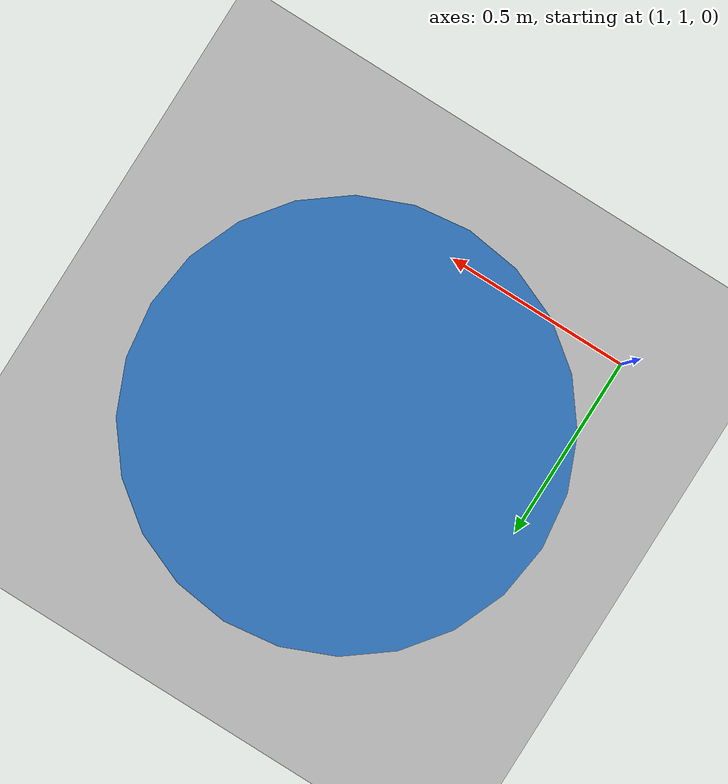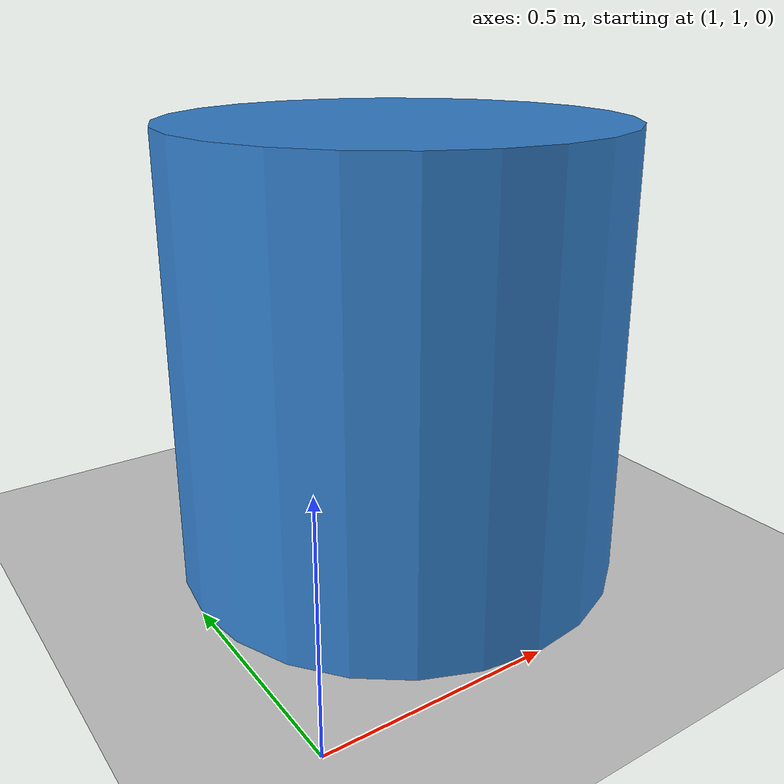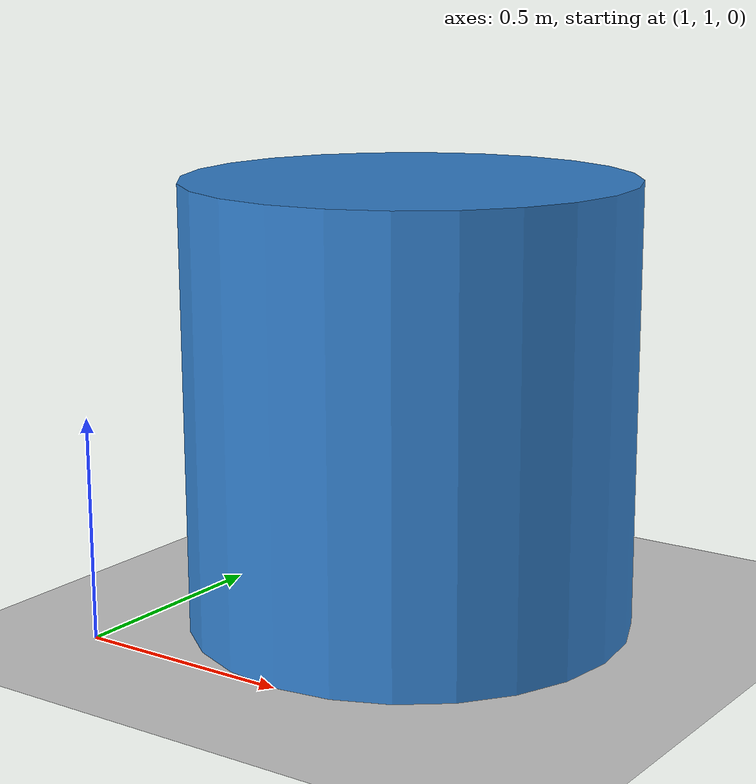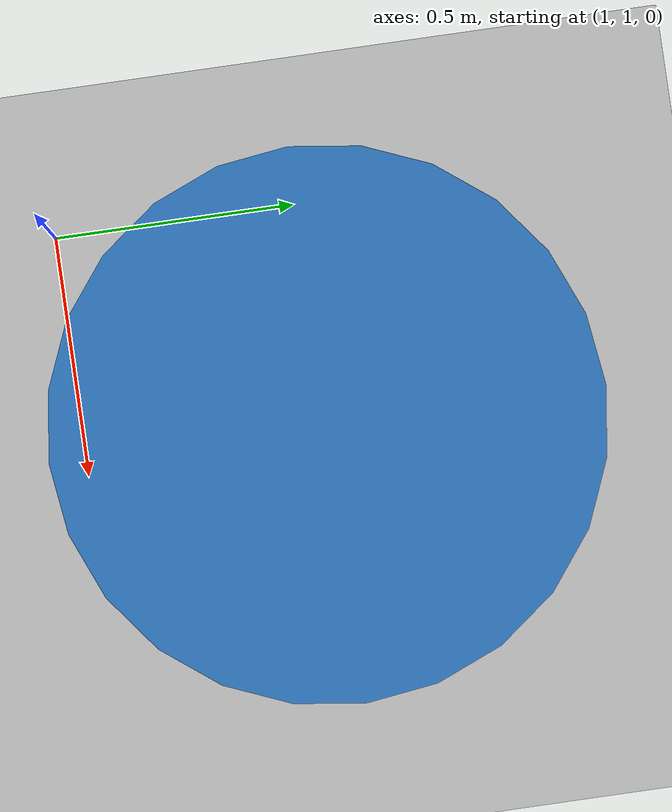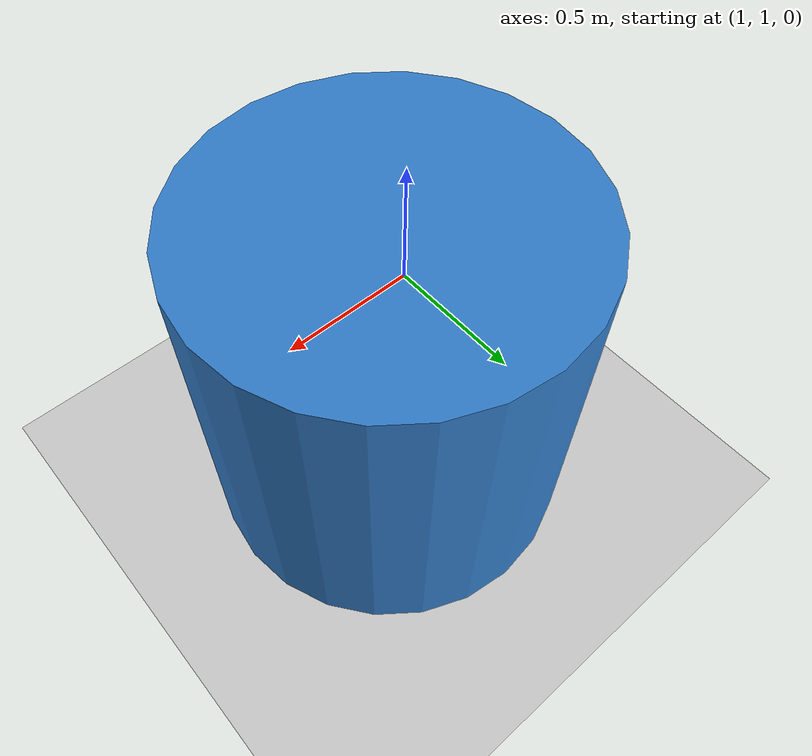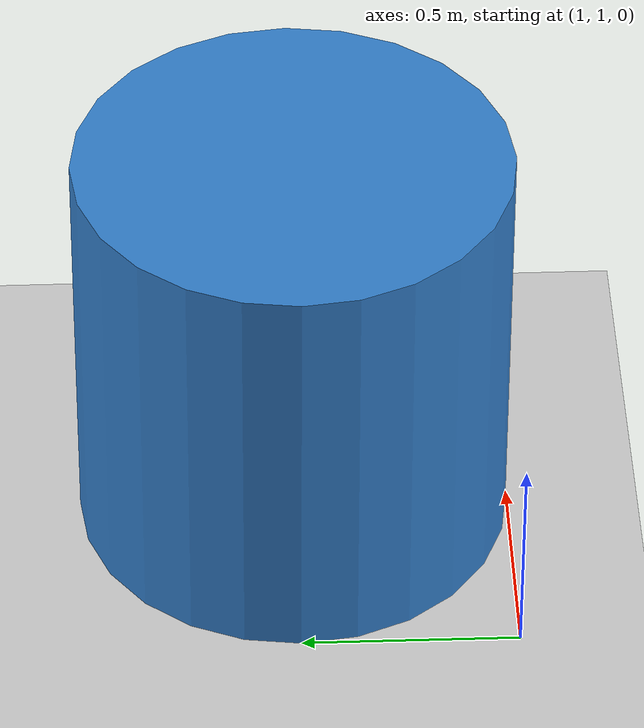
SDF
<?xml version="1.0"?>
<sdf version="1.6">
  <world name="default">

    <include>
      <uri>model://ground_plane</uri>
    </include>

    <include>
      <uri>model://sun</uri>
    </include>

    <model name='cylinder'>
      <static>true</static>
      <pose>1.5 1.5 0.5 0 0 0</pose>
      <link name='link'>
        <collision name='collision'>
          <geometry>
            <cylinder>
              <radius>0.5</radius>
              <length>1.0</length>
            </cylinder>
          </geometry>
        </collision>
        <visual name='visual'>
          <geometry>
            <cylinder>
              <radius>0.5</radius>
              <length>1.0</length>
            </cylinder>
          </geometry>
          <material>
            <ambient>0.2 0.5 0.8 1</ambient>
            <diffuse>0.2 0.5 0.8 1</diffuse>
          </material>
        </visual>
      </link>
    </model>

    <scene>
      <shadows>false</shadows>
    </scene>

    <gui fullscreen='0'>
      <camera name='user_camera'>
        <pose frame=''>0.319654 -0.235002 9.29441 0 1.5138 0.009599</pose>
        <view_controller>orbit</view_controller>
        <projection_type>perspective</projection_type>
      </camera>
    </gui>

    <physics type="ode">
      <real_time_update_rate>1000.0</real_time_update_rate>
      <max_step_size>0.001</max_step_size>
      <real_time_factor>1</real_time_factor>
      <ode>
        <solver>
          <type>quick</type>
          <iters>150</iters>
          <precon_iters>0</precon_iters>
          <sor>1.400000</sor>
          <use_dynamic_moi_rescaling>1</use_dynamic_moi_rescaling>
        </solver>
        <constraints>
          <cfm>0.00001</cfm>
          <erp>0.2</erp>
          <contact_max_correcting_vel>2000.000000</contact_max_correcting_vel>
          <contact_surface_layer>0.01000</contact_surface_layer>
        </constraints>
      </ode>
    </physics>

  </world>
</sdf>
